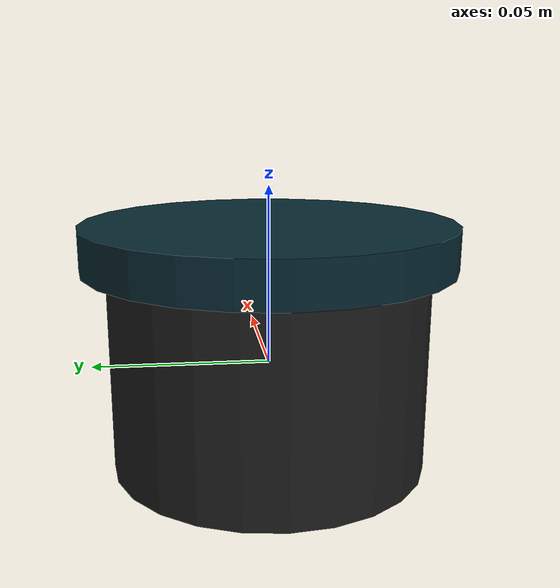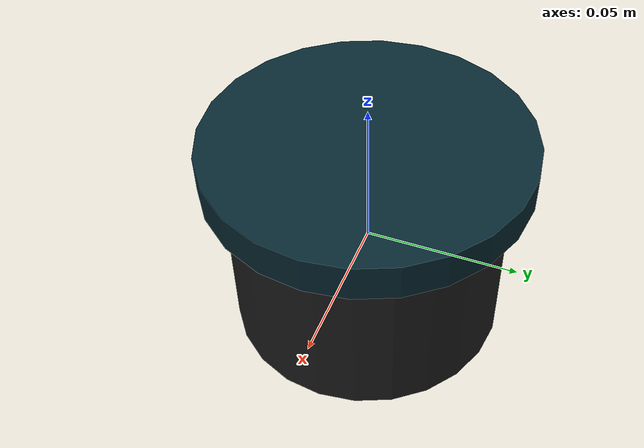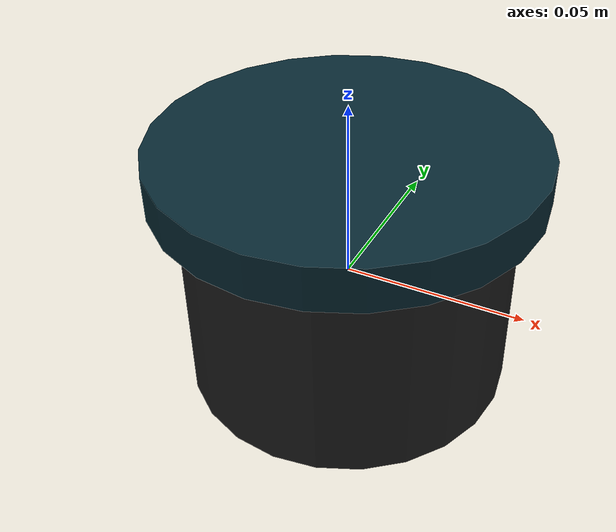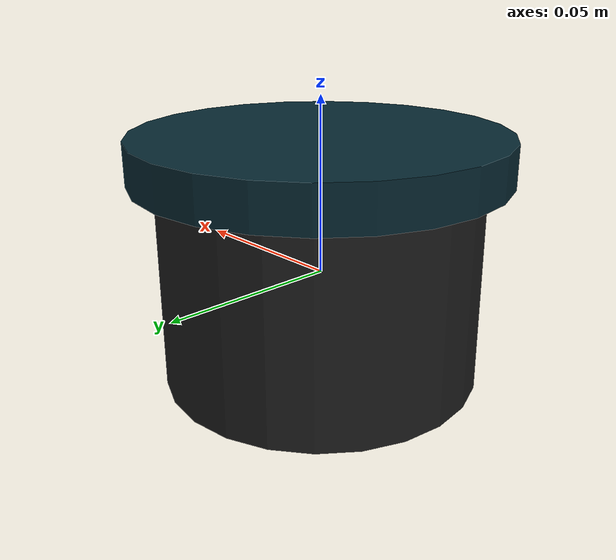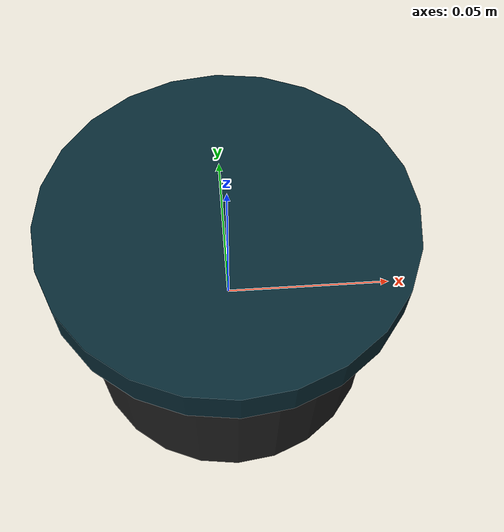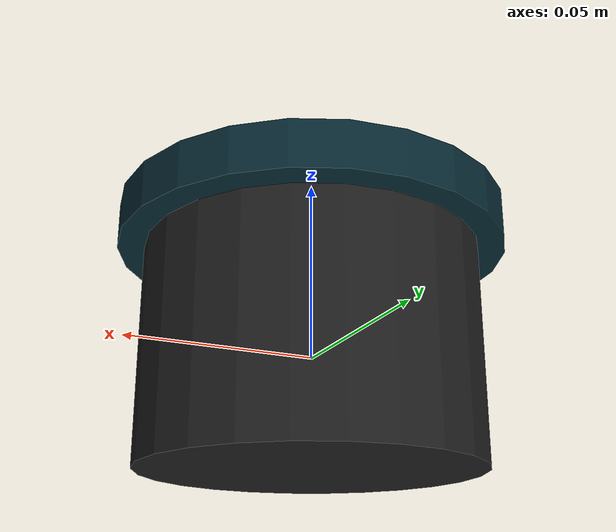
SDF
<?xml version="1.0" ?>
<sdf version="1.5">
  <model name="inspection_lidar">
    <link name="link">
      <gravity>false</gravity>
      <kinematic>true</kinematic>
      <inertial>
        <mass>0.25</mass>
        <inertia>
          <ixx>2.2e-5</ixx>
          <ixy>0</ixy>
          <ixz>0</ixz>
          <iyy>2.2e-5</iyy>
          <iyz>0</iyz>
          <izz>2.2e-5</izz>
        </inertia>
      </inertial>
      <visual name="visual">
        <geometry>
          <cylinder>
            <radius>0.045</radius>
            <length>0.060</length>
          </cylinder>
        </geometry>
        <material>
          <ambient>0.08 0.08 0.08 1</ambient>
          <diffuse>0.12 0.12 0.12 1</diffuse>
        </material>
      </visual>
      <visual name="scan_ring">
        <pose>0 0 0.034 0 0 0</pose>
        <geometry><cylinder><radius>0.052</radius><length>0.012</length></cylinder></geometry>
        <material><ambient>0.03 0.16 0.20 1</ambient><diffuse>0.03 0.16 0.20 1</diffuse><specular>0.5 0.65 0.7 1</specular></material>
      </visual>
      <sensor name="mid360" type="ray">
        <always_on>true</always_on>
        <update_rate>10</update_rate>
        <visualize>false</visualize>
        <ray>
          <scan>
            <horizontal>
              <samples>360</samples>
              <resolution>1</resolution>
              <min_angle>-3.14159265359</min_angle>
              <max_angle>3.14159265359</max_angle>
            </horizontal>
            <vertical>
              <samples>16</samples>
              <resolution>1</resolution>
              <min_angle>-0.2617993878</min_angle>
              <max_angle>0.2617993878</max_angle>
            </vertical>
          </scan>
          <range>
            <min>0.10</min>
            <max>70.0</max>
            <resolution>0.01</resolution>
          </range>
          <noise>
            <type>gaussian</type>
            <mean>0.0</mean>
            <stddev>0.01</stddev>
          </noise>
        </ray>
        <!-- This plugin is provided by ros-humble-gazebo-plugins.  The
             PointCloud2 topic is shaped like a MID-360 data stream; it is
             still synthetic Gazebo data, not a hardware driver. -->
        <plugin name="mid360_ros" filename="libgazebo_ros_ray_sensor.so">
          <ros>
            <namespace>/inspection/mid360</namespace>
            <remapping>~/out:=points</remapping>
          </ros>
          <output_type>sensor_msgs/PointCloud2</output_type>
          <frame_name>inspection_mid360_link</frame_name>
        </plugin>
      </sensor>
    </link>
  </model>
</sdf>
